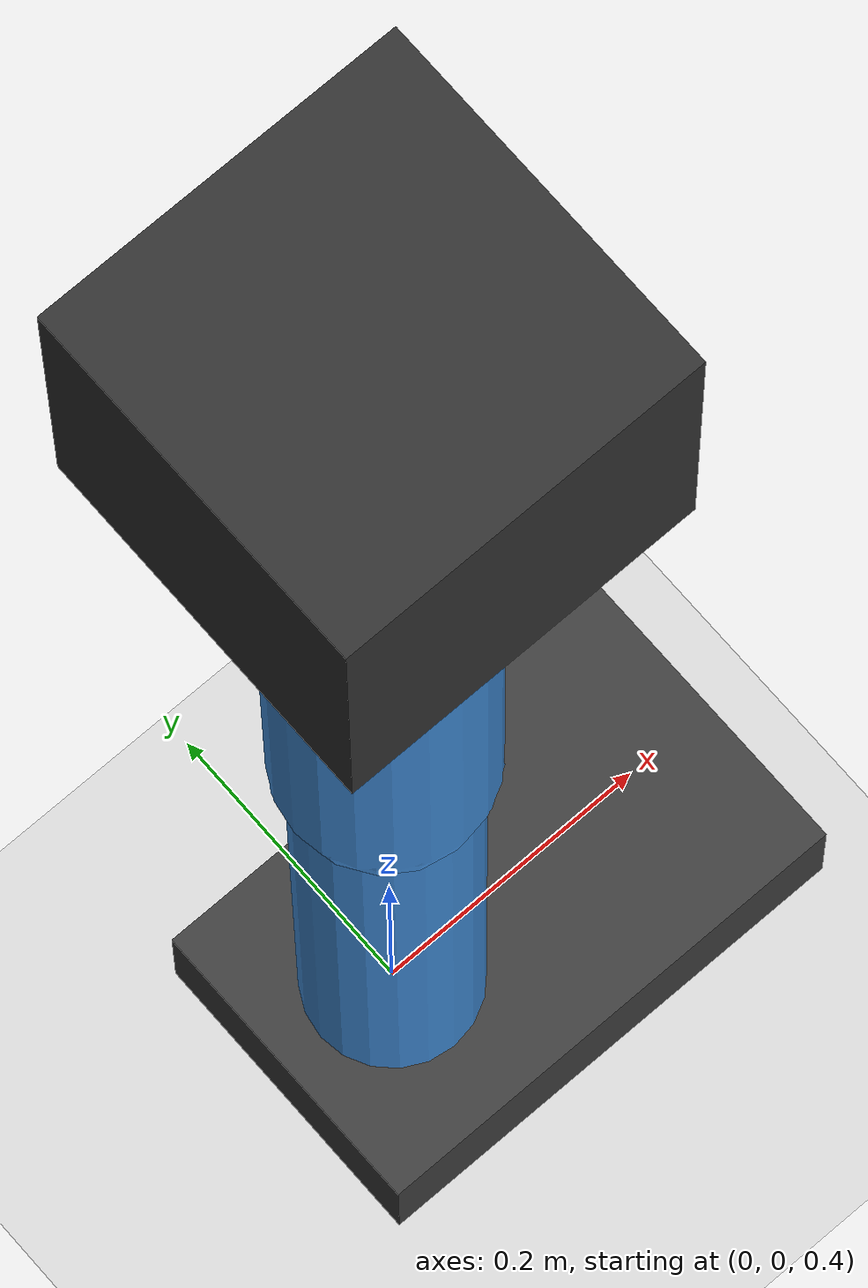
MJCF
<mujoco model="single_leg">
    <compiler angle="degree" autolimits="true"/>

    <option
        timestep="0.002"
        gravity="0 0 -9.81"
        integrator="implicitfast"/>

    <default>
        <joint
            damping="1.0"
            armature="0.02"/>

        <geom
            type="capsule"
            density="500"
            friction="0.8 0.1 0.1"
            rgba="0.25 0.55 0.85 1"/>
    </default>

    <worldbody>
        <light
            pos="0 0 3"
            dir="0 0 -1"/>

        <geom
            name="floor"
            type="plane"
            size="3 3 0.1"
            rgba="0.85 0.85 0.85 1"/>

        <body
            name="support"
            pos="0 0 1.5">

            <geom
                name="support_geom"
                type="box"
                size="0.12 0.12 0.12"
                mass="2"
                rgba="0.2 0.2 0.2 1"/>

            <body
                name="upper_leg"
                pos="0 0 -0.12">

                <joint
                    name="hip_joint"
                    type="hinge"
                    axis="0 1 0"
                    range="-70 70"/>

                <geom
                    name="upper_leg_geom"
                    fromto="0 0 0 0 0 -0.5"
                    size="0.07"/>

                <body
                    name="lower_leg"
                    pos="0 0 -0.5">

                    <joint
                        name="knee_joint"
                        type="hinge"
                        axis="0 1 0"
                        range="0 120"/>

                    <geom
                        name="lower_leg_geom"
                        fromto="0 0 0 0 0 -0.5"
                        size="0.06"/>

                    <body
                        name="foot"
                        pos="0 0 -0.5">

                        <geom
                            name="foot_geom"
                            type="box"
                            pos="0.09 0 -0.03"
                            size="0.18 0.11 0.04"
                            mass="0.4"
                            rgba="0.25 0.25 0.25 1"/>
                    </body>
                </body>
            </body>
        </body>
    </worldbody>

    <actuator>
        <position
            name="hip_motor"
            joint="hip_joint"
            kp="40"
            ctrlrange="-60 60"/>

        <position
            name="knee_motor"
            joint="knee_joint"
            kp="40"
            ctrlrange="0 110"/>
    </actuator>
</mujoco>
